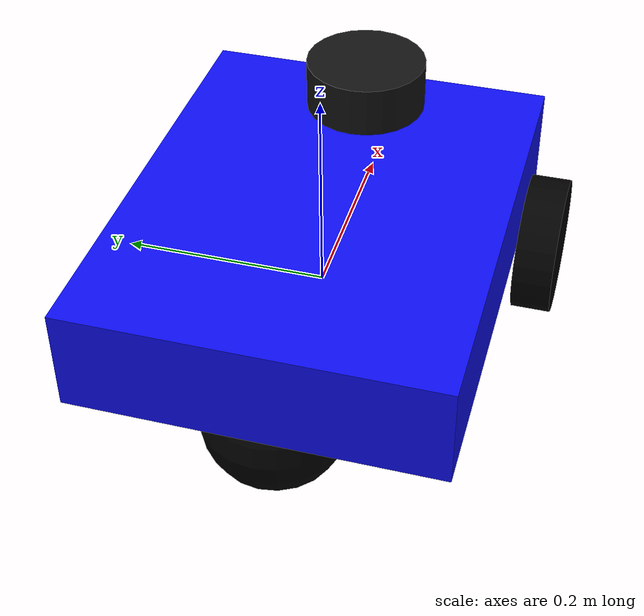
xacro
<?xml version="1.0"?>

<robot name="justina_base" xmlns:xacro="http://www.ros.org/wiki/xacro">

    <!-- Robot Parameters -->
    <xacro:property name="PI" value="3.14159265"/>
    <xacro:property name="body_length" value="0.45"/>
    <xacro:property name="body_width" value="0.35"/>
    <xacro:property name="body_height" value="0.1"/>
    <xacro:property name="body_density" value="7850.0"/> <!-- Steel -->
    <xacro:property name="body_mass" value="${body_density * body_length * body_height * body_width}"/>
    <xacro:property name="body_inertia_x" value="${1.0/12.0 * body_mass * (body_height*body_height + body_width*body_width)}"/>
    <xacro:property name="body_inertia_y" value="${1.0/12.0 * body_mass * (body_length*body_length + body_height*body_height)}"/>
    <xacro:property name="body_inertia_z" value="${1.0/12.0 * body_mass * (body_length*body_length + body_width*body_width)}"/>

    <xacro:property name="wheel_radius" value="0.07"/>
    <xacro:property name="wheel_width" value="0.04"/>
    <xacro:property name="wheel_separation" value="${body_width + wheel_width}"/>
    <xacro:property name="wheel_offset" value="${body_length/2 - wheel_radius}"/>
    <xacro:property name="wheel_offset_z" value="0.05"/>
    <xacro:property name="wheel_density" value="900"/> <!-- Ruber -->
    <xacro:property name="wheel_mass" value="${wheel_density * PI * wheel_radius * wheel_radius * wheel_width}"/>
    <xacro:property name="wheel_inertia_x" value="${1.0/12.0 * wheel_mass * (3*wheel_radius*wheel_radius + wheel_width*wheel_width)}"/>
    <xacro:property name="wheel_inertia_y" value="${1.0/12.0 * wheel_mass * (3*wheel_radius*wheel_radius + wheel_width*wheel_width)}"/>
    <xacro:property name="wheel_inertia_z" value="${1.0/2.0 * wheel_mass * wheel_radius * wheel_radius}"/>

    <xacro:property name="caster_radius" value="0.07"/>
    <xacro:property name="caster_offset" value="${body_length/2 - caster_radius}"/>
    <xacro:property name="caster_density" value="0.1"/>
    <xacro:property name="caster_mass" value="${caster_density * 4.0/3.0 * PI * caster_radius * caster_radius * caster_radius}"/>
    <xacro:property name="caster_inertia_x" value="${2.0/5.0 * caster_mass * caster_radius * caster_radius}"/>
    <xacro:property name="caster_inertia_y" value="${2.0/5.0 * caster_mass * caster_radius * caster_radius}"/>
    <xacro:property name="caster_inertia_z" value="${2.0/5.0 * caster_mass * caster_radius * caster_radius}"/>

    <xacro:property name="laser_radius" value="0.06"/>
    <xacro:property name="laser_height" value="0.05"/>
    <xacro:property name="laser_mass" value="0.2"/>
    <xacro:property name="laser_inertia_xx" value="${(1/12) * laser_mass * (3*laser_radius*laser_radius + laser_height*laser_height)}"/>
    <xacro:property name="laser_inertia_yy" value="${(1/12) * laser_mass * (3*laser_radius*laser_radius + laser_height*laser_height)}"/>
    <xacro:property name="laser_inertia_zz" value="${(1/2) * laser_mass * laser_radius*laser_radius}"/>

    <!-- Control Parameters -->
    <xacro:property name="max_linear_acceleration" value="10"/>
    <xacro:arg name="namespace" default="" />
    <xacro:arg name="body_color" default="0.05 0.05 0.95 1.0" />
    <xacro:arg name="cmd_vel_topic" default="/cmd_vel" />
    <xacro:arg name="odom_topic"    default="/odom" />
    <xacro:arg name="odom_frame"    default="odom" />
    <xacro:arg name="base_frame"    default="base_link" />
    <!-- Ground-truth pose straight from the simulator, used by the
         ground_truth_localizer node to correct map->odom.  See
         swarm_bringup/scripts/ground_truth_localizer.py. -->
    <xacro:arg name="ground_truth_topic" default="/ground_truth" />
    <!-- Links -->
    <link name="base_link"/>
    <!-- Body Link -->
    <link name="body_link">
        <visual>
            <origin xyz="0.0 0.0 0.0" rpy="0.0 0.0 0.0"/>
            <geometry>
                <box size="${body_length} ${body_width} ${body_height}"/>
            </geometry>
            <material name="body_material">
                <color rgba="$(arg body_color)"/>
            </material>
        </visual>
        <collision>
            <origin xyz="0.0 0.0 0.0" rpy="0.0 0.0 0.0"/>
            <geometry>
                <box size="${body_length} ${body_width} ${body_height}"/>
            </geometry>
        </collision>
        <inertial>
            <mass value="10"/>
            <inertia ixx="${body_inertia_x}" ixy="0.0" ixz="0.0" iyy="${body_inertia_y}" iyz="0" izz="${body_inertia_z}"/>
            <origin xyz="0 0 0" rpy="0 0 0"/>
        </inertial>
    </link>

    <!-- Left Wheel -->
    <link name="left_wheel_link">
        <visual>
            <origin xyz="0.0 0.0 0.0" rpy="1.570795 0.0 0.0"/>
            <geometry>
                <cylinder radius="${wheel_radius}" length="${wheel_width}"/>
            </geometry>
            <material name="wheel_material">
                <color rgba="0.0 0.0 0.0 1.0"/>
            </material>
        </visual>
        <collision>
            <origin xyz="0.0 0.0 0.0" rpy="1.570795 0.0 0.0"/>
            <geometry>
                <cylinder radius="${wheel_radius}" length="${wheel_width}"/>
            </geometry>
        </collision>
        <inertial>
            <mass value="2"/>
            <inertia ixx="${wheel_inertia_x}" ixy="0.0" ixz="0.0" iyy="${wheel_inertia_y}" iyz="0" izz="${wheel_inertia_z}"/>
            <origin xyz="0.0 0.0 0.0" rpy="1.570795 0.0 0.0"/>
        </inertial>
    </link>

    <!-- Right Wheel -->
    <link name="right_wheel_link">
        <visual>
            <origin xyz="0.0 0.0 0.0" rpy="1.570795 0.0 0.0"/>
            <geometry>
                <cylinder radius="${wheel_radius}" length="${wheel_width}"/>
            </geometry>
            <material name="wheel_material">
                <color rgba="0.0 0.0 0.0 1.0"/>
            </material>
        </visual>
        <collision>
            <origin xyz="0.0 0.0 0.0" rpy="1.570795 0.0 0.0"/>
            <geometry>
                <cylinder radius="${wheel_radius}" length="${wheel_width}"/>
            </geometry>
        </collision>
        <inertial>
            <mass value="2"/>
            <inertia ixx="${wheel_inertia_x}" ixy="0.0" ixz="0.0" iyy="${wheel_inertia_y}" iyz="0" izz="${wheel_inertia_z}"/>
            <origin xyz="0.0 0.0 0.0" rpy="1.570795 0.0 0.0"/>
        </inertial>
    </link>

    <!-- Caster Wheel -->
    <link name="caster_link">
        <visual>
            <origin xyz="0.0 0.0 0.0" rpy="0.0 0.0 0.0"/>
            <geometry>
                <sphere radius="${caster_radius}"/>
            </geometry>
            <material name="caster_material">
                <color rgba="0.0 0.0 0.0 1.0"/>
            </material>
        </visual>
        <collision>
            <origin xyz="0.0 0.0 0.0" rpy="0.0 0.0 0.0"/>
            <geometry>
                <sphere radius="${caster_radius}"/>
            </geometry>
        </collision>
        <inertial>
            <mass value="0.5"/>
            <inertia ixx="${caster_inertia_x}" ixy="0.0" ixz="0.0" iyy="${caster_inertia_y}" iyz="0" izz="${caster_inertia_z}"/>
            <origin xyz="0 0 0" rpy="0 0 0"/>
        </inertial>
    </link>

    <link name="laser_link">
      <visual>
         <origin xyz="0 0 0"/>
         <geometry>
            <cylinder length="${laser_height}" radius="${laser_radius}"/>
         </geometry>
         <material name="laser_material">
            <color rgba="0.07 0.07 0.07 1.0"/>
         </material>
      </visual>
      <collision>
         <origin xyz="0 0 0"/>
         <geometry>
            <cylinder length="${laser_height}" radius="${laser_radius}"/>
         </geometry>
      </collision>
      <inertial>
        <mass value="${laser_mass}"/>
        <inertia ixx="${laser_inertia_xx}" ixy="0.0" ixz="0.0" iyy="${laser_inertia_yy}" iyz="0" izz="${laser_inertia_zz}"/>
        <origin xyz="0 0 0" rpy="0 0 0"/>
      </inertial>
   </link>

   <!-- Joints -->
   <joint name="base_to_body" type="fixed">
     <origin xyz="0 0 ${body_height/2}" rpy="0 0 0"/>
     <parent link="base_link"/>
     <child link="body_link"/>
   </joint>

   <!-- Left Wheel Joint -->
   <joint name="left_wheel_joint" type="continuous">
     <origin xyz="${wheel_offset} ${wheel_separation/2} ${-wheel_radius/2 - wheel_offset_z}" rpy="0 0 0"/>
     <parent link="body_link"/>
     <child link="left_wheel_link"/>
     <axis xyz="0 1 0"/>
     <limit effort="100" velocity="10.0"/>
     <dynamics damping="0.1" friction="0.1"/>
   </joint>

   <!-- Right Wheel Joint -->
   <joint name="right_wheel_joint" type="continuous">
        <origin xyz="${wheel_offset} ${-wheel_separation/2} ${-wheel_radius/2 - wheel_offset_z}" rpy="0 0 0"/>
        <parent link="body_link"/>
        <child link="right_wheel_link"/>
        <axis xyz="0 1 0"/>
        <limit effort="100" velocity="10.0"/>
        <dynamics damping="0.1" friction="0.1"/>
    </joint>

    <!-- Caster Wheel Joint (fixed) -->
    <joint name="caster_joint" type="fixed">
        <origin xyz="${-caster_offset} 0 ${-caster_radius/2 - wheel_offset_z}" rpy="0 0 0"/>
        <parent link="body_link"/>
        <child link="caster_link"/>
    </joint>

    <!-- Body to laser joint -->
    <joint name="laser_joint" type="fixed">
      <origin xyz="${body_length/2 - laser_radius} 0.0 ${body_height/2+laser_height/2}" rpy="0 0 0"/>
      <parent link="body_link"/>
      <child link="laser_link"/>
    </joint>

    <!-- Gazebo Parameters -->
    <gazebo reference="body_link">
        <mu1>1.0</mu1>
        <mu2>1.0</mu2>
    </gazebo>

    <gazebo reference="right_wheel_link">
        <mu1>1.0</mu1>
        <mu2>1.0</mu2>
    </gazebo>

    <gazebo reference="left_wheel_link">
        <mu1>1.0</mu1>
        <mu2>1.0</mu2>
    </gazebo>

    <gazebo reference="caster_link">
        <mu1>0.000001</mu1>
        <mu2>0.000001</mu2>
    </gazebo>

    <gazebo reference="laser_link">
        <mu1>1.0</mu1>
        <mu2>1.0</mu2>
    </gazebo>

    <!-- Gazebo Plugins -->
    <gazebo>
      <plugin filename="gz-sim-diff-drive-system" name="gz::sim::systems::DiffDrive">
        <right_joint>right_wheel_joint</right_joint>
        <left_joint>left_wheel_joint</left_joint>
        <wheel_separation>${wheel_separation}</wheel_separation>
        <wheel_radius>${wheel_radius}</wheel_radius>
        <max_linear_acceleration>${max_linear_acceleration}</max_linear_acceleration>
        <odom_publish_frequency>100</odom_publish_frequency>
        <topic>$(arg cmd_vel_topic)</topic>
        <tf_topic>tf</tf_topic>
        <frame_id>$(arg odom_frame)</frame_id>
        <child_frame_id>$(arg base_frame)</child_frame_id>
        <odom_topic>$(arg odom_topic)</odom_topic>
      </plugin>

      <plugin filename="gz-sim-odometry-publisher-system"
              name="gz::sim::systems::OdometryPublisher">
        <odom_frame>map</odom_frame>
        <robot_base_frame>$(arg base_frame)</robot_base_frame>
        <odom_topic>$(arg ground_truth_topic)</odom_topic>
        <odom_publish_frequency>50</odom_publish_frequency>
        <dimensions>3</dimensions>
      </plugin>

      <plugin filename="gz-sim-joint-state-publisher-system" name="gz::sim::systems::JointStatePublisher">
        <topic>joint_states</topic>
        <joint_name>right_wheel_joint</joint_name>
        <joint_name>left_wheel_joint</joint_name>
      </plugin>

    </gazebo>

    <gazebo reference="laser_link">
      <sensor name="laser" type="gpu_lidar">
         <pose> 0 0 0 0 0 0 </pose>
         <always_on>true</always_on>
         <visualize>true</visualize>
         <update_rate>10</update_rate>
         <topic>scan</topic>
         <gz_frame_id>laser_link</gz_frame_id>
         <lidar>
           <scan>
             <horizontal>
               <samples>480</samples>
               <min_angle>-2.0944</min_angle>
               <max_angle>2.0944</max_angle>
             </horizontal>
           </scan>
           <range>
             <min>0.1</min>
             <max>10.0</max>
           </range>
           <noise>
             <type>gaussian</type>
             <mean>0.0</mean>
             <stddev>0.02</stddev>
           </noise>
         </lidar>
      </sensor>
    </gazebo>

</robot>
